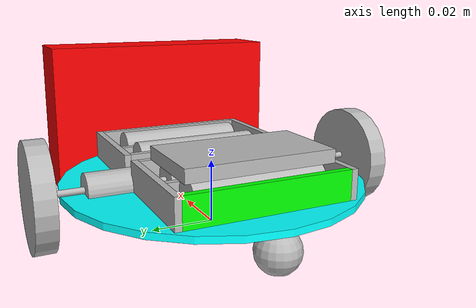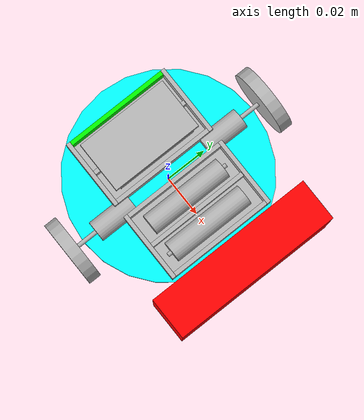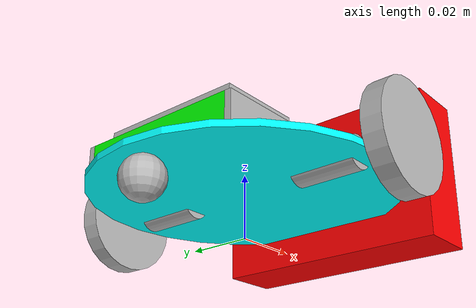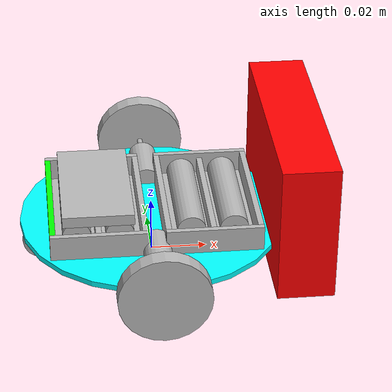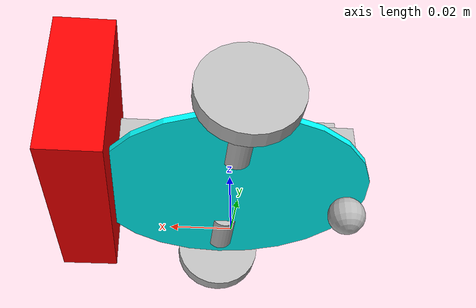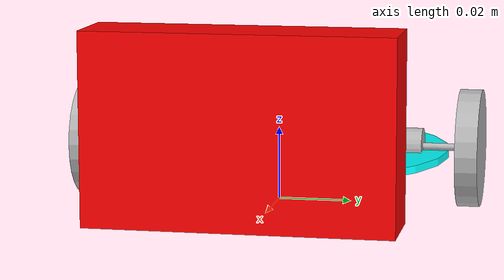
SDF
<?xml version="1.0"?>
<sdf version="1.11">
  <plugin filename="gz-sim-contact-system" name="gz::sim::systems::Contact"/>
  <model name="3pi_front_cam_robot">
    <static>0</static>
    <pose>0 0 0 0 0 0</pose>
    <frame name="lidar_frame" attached_to="blade_link">
      <pose>0.047 0 0 0 0 0</pose>
    </frame>
    <!-- LINKS - LINKS - LINKS -->

    <!-- Central robot biody, a flat circular disc -->
    <link name="blade_link">
      <pose>0 0 0.013 0 0 0</pose>
      <inertial>
        <mass>0.0005</mass>
        <pose>0 0 0.001 0 0 0</pose>
        <inertia>
          <ixx>2.92e-06</ixx>
          <ixy>0</ixy>
          <ixz>0</ixz>
          <iyy>2.92e-06</iyy>
          <iyz>0</iyz>
          <izz>5.52e-06</izz>
        </inertia>
      </inertial>
      <self_collide>0</self_collide>
      <enable_wind>0</enable_wind>
      <kinematic>0</kinematic>
      <gravity>1</gravity>
      <visual name="body_visual">
        <pose>0 0 0.001 0 0 0</pose>
        <geometry>
          <cylinder>
            <radius>0.047</radius>
            <length>0.002</length>
          </cylinder>
        </geometry>
        <material>
          <ambient>0.0 1.0 1.0 1</ambient>
          <diffuse>0.0 1.0 1.0 1</diffuse>
          <specular>0.0 1.0 1.0 1</specular>
        </material>
        <transparency>0</transparency>
        <cast_shadows>1</cast_shadows>
      </visual>
      <sensor name="gpu_lidar" type="gpu_lidar">"
                <pose relative_to="lidar_frame">0 0 0 0 0 0</pose>
                <topic>/vehicle/lidar</topic>
                <update_rate>300</update_rate>
                <ray><scan><horizontal><samples>500</samples><resolution>1</resolution><min_angle>-2</min_angle><max_angle>2</max_angle></horizontal><vertical><samples>1</samples><resolution>0.01</resolution><min_angle>0</min_angle><max_angle>0</max_angle></vertical></scan><range><min>0.08</min><max>10.0</max><resolution>0.01</resolution></range></ray>
                <always_on>1</always_on>
                <visualize>false</visualize>
            </sensor>
      <collision name="collision_sensor_volume">
        <geometry>
          <cylinder>
            <radius>0.07</radius>
            <length> 0.002 </length>
          </cylinder>
        </geometry>
      </collision>
      <sensor name="sensor_contact" type="contact">
        <contact>
          <collision>collision_sensor_volume</collision>
          <topic>/contact_sensor</topic>
        </contact>
        <always_on>1</always_on>
        <update_rate>100</update_rate>
      </sensor>
    </link>
    <link name="battery_b_lr_link">
      <pose>-0.0275 0.02 0.02 1.570796 0 0</pose>
      <inertial>
        <mass>0.000756</mass>
        <pose>0 0 0.02 0 0 0</pose>
        <inertia>
          <ixx>1.06e-06</ixx>
          <ixy>0</ixy>
          <ixz>0</ixz>
          <iyy>1.06e-06</iyy>
          <iyz>0</iyz>
          <izz>9.5e-08</izz>
        </inertia>
      </inertial>
      <self_collide>0</self_collide>
      <enable_wind>0</enable_wind>
      <kinematic>0</kinematic>
      <gravity>1</gravity>
      <visual name="body_visual">
        <pose>0 0 0.02 0 0 0</pose>
        <geometry>
          <cylinder>
            <radius>0.005</radius>
            <length>0.04</length>
          </cylinder>
        </geometry>
        <transparency>0</transparency>
        <cast_shadows>1</cast_shadows>
      </visual>
      <visual name="head_visual">
        <pose>0 0 0.041 0 0 0</pose>
        <geometry>
          <cylinder>
            <radius>0.001</radius>
            <length>0.002</length>
          </cylinder>
        </geometry>
        <transparency>0</transparency>
        <cast_shadows>1</cast_shadows>
      </visual>
    </link>
    <link name="battery_b_rl_link">
      <pose>-0.0125 -0.02 0.02 -1.570796 0 0</pose>
      <inertial>
        <mass>0.000756</mass>
        <pose>0 0 0.02 0 0 0</pose>
        <inertia>
          <ixx>1.06e-06</ixx>
          <ixy>0</ixy>
          <ixz>0</ixz>
          <iyy>1.06e-06</iyy>
          <iyz>0</iyz>
          <izz>9.5e-08</izz>
        </inertia>
      </inertial>
      <self_collide>0</self_collide>
      <enable_wind>0</enable_wind>
      <kinematic>0</kinematic>
      <gravity>1</gravity>
      <visual name="body_visual">
        <pose>0 0 0.02 0 0 0</pose>
        <geometry>
          <cylinder>
            <radius>0.005</radius>
            <length>0.04</length>
          </cylinder>
        </geometry>
        <transparency>0</transparency>
        <cast_shadows>1</cast_shadows>
      </visual>
      <visual name="head_visual">
        <pose>0 0 0.041 0 0 0</pose>
        <geometry>
          <cylinder>
            <radius>0.001</radius>
            <length>0.002</length>
          </cylinder>
        </geometry>
        <transparency>0</transparency>
        <cast_shadows>1</cast_shadows>
      </visual>
    </link>
    <link name="box_b_link">
      <pose>-0.02 0 0.014 0 0 1.570796</pose>
      <inertial>
        <mass>0.000101</mass>
        <pose>0 0 0.005 0 0 0</pose>
        <inertia>
          <ixx>1.06e-07</ixx>
          <ixy>0</ixy>
          <ixz>0</ixz>
          <iyy>2.19e-07</iyy>
          <iyz>0</iyz>
          <izz>3.08e-07</izz>
        </inertia>
      </inertial>
      <self_collide>0</self_collide>
      <enable_wind>0</enable_wind>
      <kinematic>0</kinematic>
      <gravity>1</gravity>
      <visual name="front_visual">
        <pose>0 0.016 0.005 0 0 0</pose>
        <geometry>
          <box>
            <size>0.05 0.002 0.01</size>
          </box>
        </geometry>
        <material>
          <ambient>0 1 0 1</ambient>
          <diffuse>0 1 0 1</diffuse>
          <specular>0 1 0 1</specular>
        </material>
        <transparency>0</transparency>
        <cast_shadows>1</cast_shadows>
      </visual>
      <visual name="back_visual">
        <pose>0 -0.016 0.005 0 0 0</pose>
        <geometry>
          <box>
            <size>0.05 0.002 0.01</size>
          </box>
        </geometry>
        <transparency>0</transparency>
        <cast_shadows>1</cast_shadows>
      </visual>
      <visual name="bottom_visual">
        <pose>0 0 0.001 0 0 0</pose>
        <geometry>
          <box>
            <size>0.05 0.03 0.002</size>
          </box>
        </geometry>
        <transparency>0</transparency>
        <cast_shadows>1</cast_shadows>
      </visual>
      <visual name="left_visual">
        <pose>-0.026 0 0.005 0 0 0</pose>
        <geometry>
          <box>
            <size>0.002 0.034 0.01</size>
          </box>
        </geometry>
        <transparency>0</transparency>
        <cast_shadows>1</cast_shadows>
      </visual>
      <visual name="middle_visual">
        <pose>0 0 0.005 0 0 0</pose>
        <geometry>
          <box>
            <size>0.05 0.002 0.006</size>
          </box>
        </geometry>
        <transparency>0</transparency>
        <cast_shadows>1</cast_shadows>
      </visual>
      <visual name="right_visual">
        <pose>0.026 0 0.005 0 0 0</pose>
        <geometry>
          <box>
            <size>0.002 0.034 0.01</size>
          </box>
        </geometry>
        <transparency>0</transparency>
        <cast_shadows>1</cast_shadows>
      </visual>
    </link>
    <link name="battery_f_lr_link">
      <pose>0.0275 0.02 0.02 1.570796 0 0</pose>
      <inertial>
        <mass>0.000756</mass>
        <pose>0 0 0.02 0 0 0</pose>
        <inertia>
          <ixx>1.06e-06</ixx>
          <ixy>0</ixy>
          <ixz>0</ixz>
          <iyy>1.06e-06</iyy>
          <iyz>0</iyz>
          <izz>9.5e-08</izz>
        </inertia>
      </inertial>
      <self_collide>0</self_collide>
      <enable_wind>0</enable_wind>
      <kinematic>0</kinematic>
      <gravity>1</gravity>
      <visual name="body_visual">
        <pose>0 0 0.02 0 0 0</pose>
        <geometry>
          <cylinder>
            <radius>0.005</radius>
            <length>0.04</length>
          </cylinder>
        </geometry>
        <transparency>0</transparency>
        <cast_shadows>1</cast_shadows>
      </visual>
      <visual name="head_visual">
        <pose>0 0 0.041 0 0 0</pose>
        <geometry>
          <cylinder>
            <radius>0.001</radius>
            <length>0.002</length>
          </cylinder>
        </geometry>
        <transparency>0</transparency>
        <cast_shadows>1</cast_shadows>
      </visual>
    </link>
    <link name="battery_f_rl_link">
      <pose>0.0125 -0.02 0.02 -1.570796 0 0</pose>
      <inertial>
        <mass>0.000756</mass>
        <pose>0 0 0.02 0 0 0</pose>
        <inertia>
          <ixx>1.06e-06</ixx>
          <ixy>0</ixy>
          <ixz>0</ixz>
          <iyy>1.06e-06</iyy>
          <iyz>0</iyz>
          <izz>9.5e-08</izz>
        </inertia>
      </inertial>
      <self_collide>0</self_collide>
      <enable_wind>0</enable_wind>
      <kinematic>0</kinematic>
      <gravity>1</gravity>
      <visual name="body_visual">
        <pose>0 0 0.02 0 0 0</pose>
        <geometry>
          <cylinder>
            <radius>0.005</radius>
            <length>0.04</length>
          </cylinder>
        </geometry>
        <transparency>0</transparency>
        <cast_shadows>1</cast_shadows>
      </visual>
      <visual name="head_visual">
        <pose>0 0 0.041 0 0 0</pose>
        <geometry>
          <cylinder>
            <radius>0.001</radius>
            <length>0.002</length>
          </cylinder>
        </geometry>
        <transparency>0</transparency>
        <cast_shadows>1</cast_shadows>
      </visual>
    </link>
    <link name="box_f_link">
      <pose>0.02 0 0.014 0 0 -1.570796</pose>
      <inertial>
        <mass>0.000101</mass>
        <pose>0 0 0.005 0 0 0</pose>
        <inertia>
          <ixx>1.06e-07</ixx>
          <ixy>0</ixy>
          <ixz>0</ixz>
          <iyy>2.19e-07</iyy>
          <iyz>0</iyz>
          <izz>3.08e-07</izz>
        </inertia>
      </inertial>
      <self_collide>0</self_collide>
      <enable_wind>0</enable_wind>
      <kinematic>0</kinematic>
      <gravity>1</gravity>
      <visual name="right_visual">
        <pose>0.026 0 0.005 0 0 0</pose>
        <geometry>
          <box>
            <size>0.002 0.034 0.01</size>
          </box>
        </geometry>
        <transparency>0</transparency>
        <cast_shadows>1</cast_shadows>
      </visual>
      <visual name="front_visual">
        <pose>0 0.016 0.005 0 0 0</pose>
        <geometry>
          <box>
            <size>0.05 0.002 0.01</size>
          </box>
        </geometry>
        <transparency>0</transparency>
        <cast_shadows>1</cast_shadows>
      </visual>
      <visual name="bottom_visual">
        <pose>0 0 0.001 0 0 0</pose>
        <geometry>
          <box>
            <size>0.05 0.03 0.002</size>
          </box>
        </geometry>
        <transparency>0</transparency>
        <cast_shadows>1</cast_shadows>
      </visual>
      <visual name="middle_visual">
        <pose>0 0 0.005 0 0 0</pose>
        <geometry>
          <box>
            <size>0.05 0.002 0.006</size>
          </box>
        </geometry>
        <transparency>0</transparency>
        <cast_shadows>1</cast_shadows>
      </visual>
      <visual name="left_visual">
        <pose>-0.026 0 0.005 0 0 0</pose>
        <geometry>
          <box>
            <size>0.002 0.034 0.01</size>
          </box>
        </geometry>
        <transparency>0</transparency>
        <cast_shadows>1</cast_shadows>
      </visual>
      <visual name="back_visual">
        <pose>0 -0.016 0.005 0 0 0</pose>
        <geometry>
          <box>
            <size>0.05 0.002 0.01</size>
          </box>
        </geometry>
        <transparency>0</transparency>
        <cast_shadows>1</cast_shadows>
      </visual>
    </link>
    <link name="caster_link">
      <pose>-0.04 0 0 0 0 0</pose>
      <inertial>
        <mass>0.000144</mass>
        <pose>0 0 0.0065 0 0 0</pose>
        <inertia>
          <ixx>2.4e-08</ixx>
          <ixy>0</ixy>
          <ixz>0</ixz>
          <iyy>2.4e-08</iyy>
          <iyz>0</iyz>
          <izz>2.4e-08</izz>
        </inertia>
      </inertial>
      <self_collide>0</self_collide>
      <enable_wind>0</enable_wind>
      <kinematic>0</kinematic>
      <gravity>1</gravity>
      <visual name="body_visual">
        <pose>0 0 0.0065 0 0 0</pose>
        <geometry>
          <sphere>
            <radius>0.0065</radius>
          </sphere>
        </geometry>
        <transparency>0</transparency>
        <cast_shadows>1</cast_shadows>
      </visual>
      <collision name="body_collision">
        <laser_retro>0</laser_retro>
        <max_contacts>10</max_contacts>
        <pose>0 0 0.0065 0 0 0</pose>
        <geometry>
          <sphere>
            <radius>0.0065</radius>
          </sphere>
        </geometry>
        <surface>
          <friction>
            <ode>
              <mu>200000000000</mu>
              <mu2>200000000000</mu2>
              <slip1>0</slip1>
              <slip2>0</slip2>
            </ode>
            <torsional>
              <coefficient>0.75</coefficient>
              <use_patch_radius>0</use_patch_radius>
              <surface_radius>0.0065</surface_radius>
              <ode>
                <slip>0</slip>
              </ode>
            </torsional>
          </friction>
          <contact>
            <ode>
              <soft_cfm>0</soft_cfm>
              <soft_erp>0.2</soft_erp>
              <kp>1e+13</kp>
              <kd>1</kd>
              <max_vel>1</max_vel>
              <min_depth>0.001</min_depth>
            </ode>
          </contact>
        </surface>
      </collision>
    </link>
    <link name="wheel_l_link">
      <pose>0 -0.05 0.016 1.570796 0 0</pose>
      <inertial>
        <mass>0.000311</mass>
        <pose>0 0 0.003 0 0 0</pose>
        <inertia>
          <ixx>2.08e-07</ixx>
          <ixy>0</ixy>
          <ixz>0</ixz>
          <iyy>2.08e-07</iyy>
          <iyz>0</iyz>
          <izz>3.98e-07</izz>
        </inertia>
      </inertial>
      <self_collide>0</self_collide>
      <enable_wind>0</enable_wind>
      <kinematic>0</kinematic>
      <gravity>1</gravity>
      <visual name="body_visual">
        <pose>0 0 0.003 0 0 0</pose>
        <geometry>
          <cylinder>
            <radius>0.016</radius>
            <length>0.006</length>
          </cylinder>
        </geometry>
        <transparency>0</transparency>
        <cast_shadows>1</cast_shadows>
      </visual>
      <collision name="body_collision">
        <laser_retro>0</laser_retro>
        <max_contacts>10</max_contacts>
        <pose>0 0 0.003 0 0 0</pose>
        <geometry>
          <cylinder>
            <radius>0.016</radius>
            <length>0.006</length>
          </cylinder>
        </geometry>
        <surface>
          <friction>
            <ode>
              <mu>2000000000000</mu>
              <mu2>2000000000000</mu2>
              <fdir1>0 0 1</fdir1>
              <slip1>0</slip1>
              <slip2>0</slip2>
            </ode>
            <torsional>
              <coefficient>15</coefficient>
              <use_patch_radius>0</use_patch_radius>
              <surface_radius>0.016</surface_radius>
              <ode>
                <slip>0</slip>
              </ode>
            </torsional>
          </friction>
          <contact>
            <ode>
              <soft_cfm>0</soft_cfm>
              <soft_erp>0.2</soft_erp>
              <kp>1e+13</kp>
              <kd>1</kd>
              <max_vel>1</max_vel>
              <min_depth>0.001</min_depth>
            </ode>
          </contact>
        </surface>
      </collision>
    </link>
    <link name="motor_l_link">
      <pose>0 -0.02 0.016 1.570796 0 0</pose>
      <inertial>
        <mass>0.003158</mass>
        <pose>0 0 0.01 0 0 0</pose>
        <inertia>
          <ixx>1.25e-06</ixx>
          <ixy>0</ixy>
          <ixz>0</ixz>
          <iyy>1.25e-06</iyy>
          <iyz>0</iyz>
          <izz>3.95e-07</izz>
        </inertia>
      </inertial>
      <self_collide>0</self_collide>
      <enable_wind>0</enable_wind>
      <kinematic>0</kinematic>
      <gravity>1</gravity>
      <visual name="body_visual">
        <pose>0 0 0.01 0 0 0</pose>
        <geometry>
          <cylinder>
            <radius>0.005</radius>
            <length>0.02</length>
          </cylinder>
        </geometry>
        <transparency>0</transparency>
        <cast_shadows>1</cast_shadows>
      </visual>
      <visual name="axis_visual">
        <pose>0 0 0.025 0 0 0</pose>
        <geometry>
          <cylinder>
            <radius>0.001</radius>
            <length>0.01</length>
          </cylinder>
        </geometry>
        <transparency>0</transparency>
        <cast_shadows>1</cast_shadows>
      </visual>
    </link>
    <link name="wheel_r_link">
      <pose>0 0.05 0.016 -1.570796 0 0</pose>
      <inertial>
        <mass>0.000311</mass>
        <pose>0 0 0.003 0 0 0</pose>
        <inertia>
          <ixx>2.08e-07</ixx>
          <ixy>0</ixy>
          <ixz>0</ixz>
          <iyy>2.08e-07</iyy>
          <iyz>0</iyz>
          <izz>3.98e-07</izz>
        </inertia>
      </inertial>
      <self_collide>0</self_collide>
      <enable_wind>0</enable_wind>
      <kinematic>0</kinematic>
      <gravity>1</gravity>
      <visual name="body_visual">
        <pose>0 0 0.003 0 0 0</pose>
        <geometry>
          <cylinder>
            <radius>0.016</radius>
            <length>0.006</length>
          </cylinder>
        </geometry>
        <transparency>0</transparency>
        <cast_shadows>1</cast_shadows>
      </visual>
      <collision name="body_collision">
        <laser_retro>0</laser_retro>
        <max_contacts>10</max_contacts>
        <pose>0 0 0.003 0 0 0</pose>
        <geometry>
          <cylinder>
            <radius>0.016</radius>
            <length>0.006</length>
          </cylinder>
        </geometry>
        <surface>
          <friction>
            <ode>
              <mu>20000000000000</mu>
              <mu2>20000000000000</mu2>
              <fdir1>0 0 1</fdir1>
              <slip1>0</slip1>
              <slip2>0</slip2>
            </ode>
            <torsional>
              <coefficient>15</coefficient>
              <use_patch_radius>0</use_patch_radius>
              <surface_radius>0.016</surface_radius>
              <ode>
                <slip>0</slip>
              </ode>
            </torsional>
          </friction>
          <contact>
            <ode>
              <soft_cfm>0</soft_cfm>
              <soft_erp>0.2</soft_erp>
              <kp>1e+13</kp>
              <kd>1</kd>
              <max_vel>1</max_vel>
              <min_depth>0.001</min_depth>
            </ode>
          </contact>
        </surface>
      </collision>
    </link>
    <link name="motor_r_link">
      <pose>0 0.02 0.016 -1.570796 0 0</pose>
      <inertial>
        <mass>0.003158</mass>
        <pose>0 0 0.01 0 0 0</pose>
        <inertia>
          <ixx>1.25e-06</ixx>
          <ixy>0</ixy>
          <ixz>0</ixz>
          <iyy>1.25e-06</iyy>
          <iyz>0</iyz>
          <izz>3.95e-07</izz>
        </inertia>
      </inertial>
      <self_collide>0</self_collide>
      <enable_wind>0</enable_wind>
      <kinematic>0</kinematic>
      <gravity>1</gravity>
      <visual name="body_visual">
        <pose>0 0 0.01 0 0 0</pose>
        <geometry>
          <cylinder>
            <radius>0.005</radius>
            <length>0.02</length>
          </cylinder>
        </geometry>
        <transparency>0</transparency>
        <cast_shadows>1</cast_shadows>
      </visual>
      <visual name="axis_visual">
        <pose>0 0 0.025 0 0 0</pose>
        <geometry>
          <cylinder>
            <radius>0.001</radius>
            <length>0.01</length>
          </cylinder>
        </geometry>
        <transparency>0</transparency>
        <cast_shadows>1</cast_shadows>
      </visual>
    </link>
    <link name="display_link">
      <pose>-0.02 0 0.025 0 0 1.570796</pose>
      <inertial>
        <mass>0.001164</mass>
        <pose>0 0 0.002 0 0 0</pose>
        <inertia>
          <ixx>6.22e-07</ixx>
          <ixy>0</ixy>
          <ixz>0</ixz>
          <iyy>1.98e-06</iyy>
          <iyz>0</iyz>
          <izz>2.57e-06</izz>
        </inertia>
      </inertial>
      <self_collide>0</self_collide>
      <enable_wind>0</enable_wind>
      <kinematic>0</kinematic>
      <gravity>1</gravity>
      <visual name="body_visual">
        <pose>0 0 0.002 0 0 0</pose>
        <geometry>
          <box>
            <size>0.045 0.025 0.004</size>
          </box>
        </geometry>
        <transparency>0</transparency>
        <cast_shadows>1</cast_shadows>
      </visual>
    </link>
    <link name="front_camera_link">
      <pose>0.048 0 0.013 0 0 0</pose>
      <inertial>
        <mass>1e-12</mass>
      </inertial>
      <self_collide>0</self_collide>
      <sensor name="camera" type="camera">
        <camera>
          <horizontal_fov>1.047</horizontal_fov>
          <image>
            <height>80</height>
            <width>80</width>
            <format>R8G8B8</format>
          </image>
          <save enabled="0">
                                        </save>
          <clip>
            <near>0.001</near>
            <far>3</far>
          </clip>
        </camera>
        <always_on>1</always_on>
        <update_rate>30</update_rate>
        <visualize>0</visualize>
        <topic>/vehicle/camera</topic>
      </sensor>
    </link>
    <link name="collider_fix_link">
      <pose>0.05 0 0.028 0 0 0</pose>
      <inertial>
        <mass>1e-12</mass>
      </inertial>
      <self_collide>0</self_collide>
      <visual name="front_visual">
        <pose>0 0 0 0 0 0</pose>
        <geometry>
          <box>
            <size>0.02 0.08 0.05</size>
          </box>
        </geometry>
        <material>
          <ambient>1.0 0.0 0.0 1</ambient>
          <diffuse>1.0 0.0 0.0 1</diffuse>
          <specular>1.0 0.0 0.0 1</specular>
        </material>
        <transparency>0</transparency>
        <cast_shadows>1</cast_shadows>
      </visual>
      <collision name="collision">
        <geometry>
          <box>
            <size>0.02 0.08 0.05</size>
          </box>
        </geometry>
      </collision>
    </link>
    <!-- JOINTS - JOINTS - JOINTS -->
    <joint name="battery_b_lr_joint" type="fixed">
      <parent>box_b_link</parent>
      <child>battery_b_lr_link</child>
      <pose>0 0 0 0 0 0</pose>
      <physics>
        <ode>
          <limit>
            <cfm>0</cfm>
            <erp>0.2</erp>
          </limit>
          <suspension>
            <cfm>0</cfm>
            <erp>0.2</erp>
          </suspension>
        </ode>
      </physics>
    </joint>
    <joint name="battery_b_rl_joint" type="fixed">
      <parent>box_b_link</parent>
      <child>battery_b_rl_link</child>
      <pose>0 0 0 0 0 0</pose>
      <physics>
        <ode>
          <limit>
            <cfm>0</cfm>
            <erp>0.2</erp>
          </limit>
          <suspension>
            <cfm>0</cfm>
            <erp>0.2</erp>
          </suspension>
        </ode>
      </physics>
    </joint>
    <joint name="battery_f_lr_joint" type="fixed">
      <parent>box_f_link</parent>
      <child>battery_f_lr_link</child>
      <pose>0 0 0 0 0 0</pose>
      <physics>
        <ode>
          <limit>
            <cfm>0</cfm>
            <erp>0.2</erp>
          </limit>
          <suspension>
            <cfm>0</cfm>
            <erp>0.2</erp>
          </suspension>
        </ode>
      </physics>
    </joint>
    <joint name="box_b_joint" type="fixed">
      <parent>blade_link</parent>
      <child>box_b_link</child>
      <pose>0 0 0 0 0 0</pose>
      <physics>
        <ode>
          <limit>
            <cfm>0</cfm>
            <erp>0.2</erp>
          </limit>
          <suspension>
            <cfm>0</cfm>
            <erp>0.2</erp>
          </suspension>
        </ode>
      </physics>
    </joint>
    <joint name="battery_f_rl_joint" type="fixed">
      <parent>box_f_link</parent>
      <child>battery_f_rl_link</child>
      <pose>0 0 0 0 0 0</pose>
      <physics>
        <ode>
          <limit>
            <cfm>0</cfm>
            <erp>0.2</erp>
          </limit>
          <suspension>
            <cfm>0</cfm>
            <erp>0.2</erp>
          </suspension>
        </ode>
      </physics>
    </joint>
    <joint name="box_f_joint" type="fixed">
      <parent>blade_link</parent>
      <child>box_f_link</child>
      <pose>0 0 0 0 0 0</pose>
      <physics>
        <ode>
          <limit>
            <cfm>0</cfm>
            <erp>0.2</erp>
          </limit>
          <suspension>
            <cfm>0</cfm>
            <erp>0.2</erp>
          </suspension>
        </ode>
      </physics>
    </joint>
    <joint name="caster_joint" type="ball">
      <parent>blade_link</parent>
      <child>caster_link</child>
      <pose>0 0 0.0065 0 0 0</pose>
      <physics>
        <ode>
          <limit>
            <cfm>0</cfm>
            <erp>0.2</erp>
          </limit>
          <suspension>
            <cfm>0</cfm>
            <erp>0.2</erp>
          </suspension>
        </ode>
      </physics>
    </joint>
    <joint name="left_axis_joint" type="revolute">
      <parent>blade_link</parent>
      <child>wheel_l_link</child>
      <pose>0 0 0 0 0 0</pose>
      <axis>
        <xyz>0 0 -1</xyz>
      </axis>
      <physics>
        <ode>
          <cfm>0</cfm>
          <erp>0.2</erp>
          <limit>
            <cfm>0</cfm>
            <erp>0.2</erp>
          </limit>
          <suspension>
            <cfm>0</cfm>
            <erp>0.2</erp>
          </suspension>
        </ode>
      </physics>
    </joint>
    <joint name="motor_l_joint" type="fixed">
      <parent>blade_link</parent>
      <child>motor_l_link</child>
      <pose>0 0 0 0 0 0</pose>
    </joint>
    <joint name="right_axis_joint" type="revolute">
      <parent>blade_link</parent>
      <child>wheel_r_link</child>
      <pose>0 0 0 0 0 0</pose>
      <axis>
        <xyz>0 0 1</xyz>
      </axis>
      <physics>
        <ode>
          <cfm>0</cfm>
          <erp>0.2</erp>
          <limit>
            <cfm>0</cfm>
            <erp>0.2</erp>
          </limit>
          <suspension>
            <cfm>0</cfm>
            <erp>0.2</erp>
          </suspension>
        </ode>
      </physics>
    </joint>
    <joint name="motor_r_joint" type="fixed">
      <parent>blade_link</parent>
      <child>motor_r_link</child>
      <pose>0 0 0 0 0 0</pose>
    </joint>
    <joint name="display_joint" type="fixed">
      <parent>box_b_link</parent>
      <child>display_link</child>
      <pose>0 0 0 0 0 0</pose>
    </joint>
    <joint name="front_camera_joint" type="fixed">
      <parent>blade_link</parent>
      <child>front_camera_link</child>
      <pose>0 0 0 0 0 0</pose>
    </joint>
    <joint name="collider_fix_joint" type="fixed">
      <parent>blade_link</parent>
      <child>collider_fix_link</child>
      <pose>0 0 0 0 0 0</pose>
    </joint>
    <!-- PLUGINS - PLUGINS - PLUGINS -->
    <plugin filename="gz-sim-diff-drive-system" name="gz::sim::systems::DiffDrive">
      <left_joint>left_axis_joint</left_joint>
      <right_joint>right_axis_joint</right_joint>
      <wheel_separation>0.1</wheel_separation>
      <wheel_radius>0.032</wheel_radius>
      <min_velocity>-2000.0</min_velocity>
      <max_velocity>+2000.0</max_velocity>
      <min_acceleration>-2000000000000000</min_acceleration>
      <max_acceleration>+2000000000000000</max_acceleration>
      <min_jerk>-200000000000000</min_jerk>
      <max_jerk>+200000000000000</max_jerk>
      <topic>/vehicle/motor</topic>
      <odom_topic>/vehicle/odo</odom_topic>
      <odom_publish_frequency>120</odom_publish_frequency>
    </plugin>
  </model>
</sdf>
